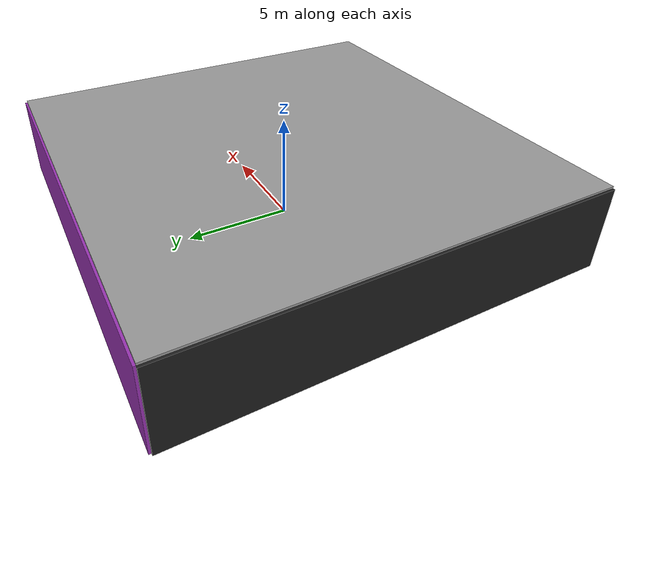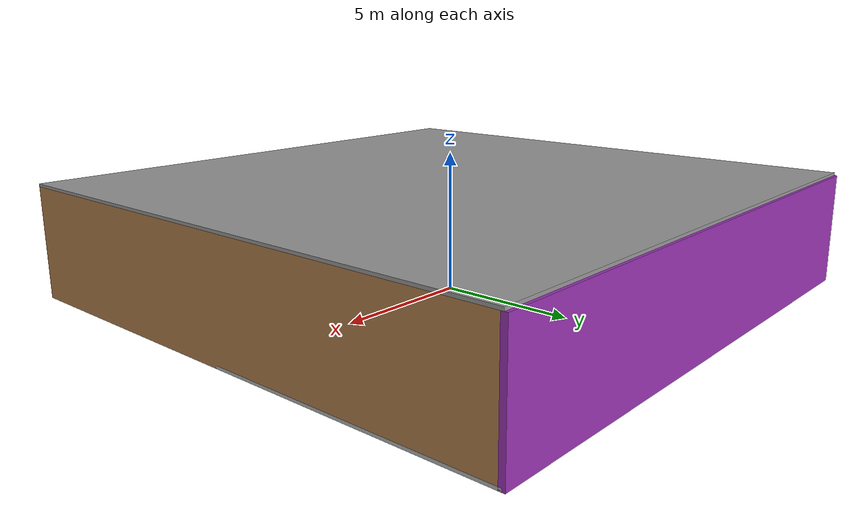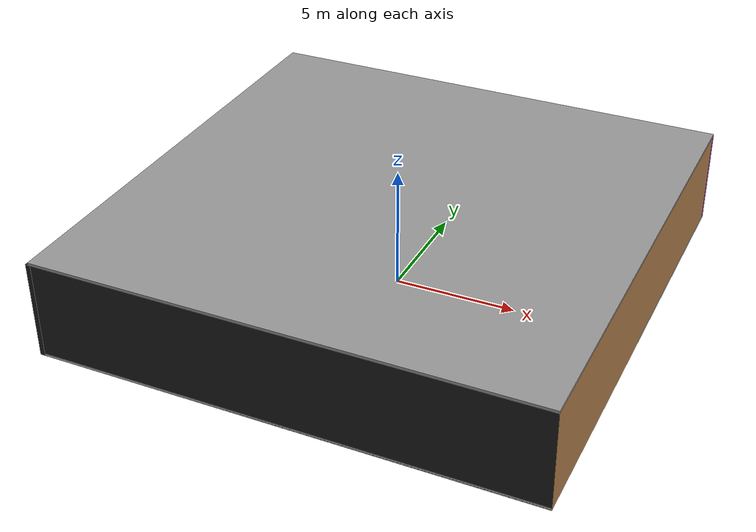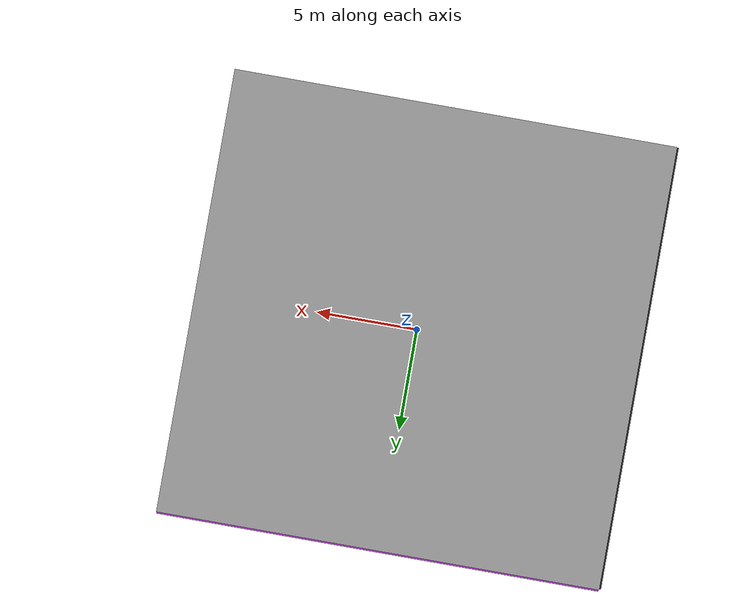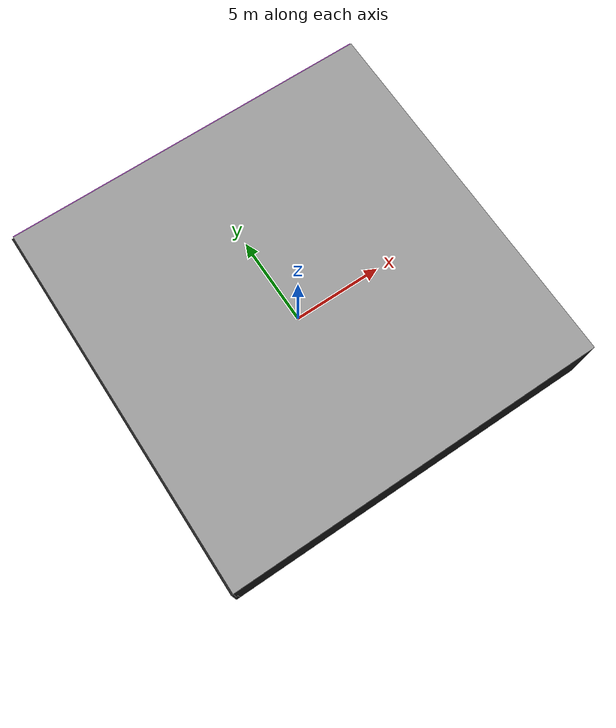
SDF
<sdf version="1.4">
 <world name="default">
  <physics type="ode">
   <max_step_size>0.001</max_step_size>
   <real_time_factor>1</real_time_factor>
   <real_time_update_rate>1000</real_time_update_rate>
   <gravity>0 0 -9.8</gravity>
  </physics>
  <scene><ambient>0.4 0.4 0.4 1</ambient><background>0.7 0.7 0.7 1</background><shadows>1</shadows></scene>
  <model name="Surrounding">
   <static>1</static>
   <link name="Ceiling">
    <collision name="Ceiling_Collision"><geometry><box><size>20 20 0.1</size></box></geometry></collision>
    <visual name="Ceiling_Visual">
     <geometry><box><size>20 20 0.1</size></box></geometry>
     <material>
      <script><uri>file://media/materials/scripts/gazebo.material</uri><name>Gazebo/Grey</name></script>
     </material>
    </visual>
    <pose>0 0 4.05 0 0 0</pose>
   </link>
   <link name="Wall_South">
    <collision name="Wall_South_Collision">
     <geometry><box><size>20 0 4</size></box></geometry>
     <pose>0 0 2 0 -0 0</pose>
    </collision>
    <visual name="Wall_South_Visual">
     <pose>0 0 2 0 -0 0</pose>
     <geometry><box><size>20 0 4</size></box></geometry>
     <material>
      <script><uri>file://media/materials/scripts/gazebo.material</uri><name>Gazebo/Black</name></script>
     </material>
    </visual>
    <velocity_decay><linear>0</linear><angular>0</angular></velocity_decay>
    <pose>0 -10 0 0 -0 0</pose>
   </link>
   <link name="Wall_East">
    <collision name="Wall_21_Collision">
     <geometry><box><size>20 0 4</size></box></geometry>
     <pose>0 0 2 0 -0 0</pose>
    </collision>
    <visual name="Wall_21_Visual">
     <pose>0 0 2 0 -0 0</pose>
     <geometry><box><size>20 0 4</size></box></geometry>
     <material>
      <script><uri>file://media/materials/scripts/gazebo.material</uri><name>Gazebo/WoodPallet</name></script>
     </material>
    </visual>
    <velocity_decay><linear>0</linear><angular>0</angular></velocity_decay>
    <pose>10 0 0 0 -0 1.5708</pose>
   </link>
   <link name="Wall_North">
    <collision name="Wall_22_Collision">
     <geometry><box><size>20 0.2 4</size></box></geometry>
     <pose>0 0 2 0 -0 0</pose>
    </collision>
    <visual name="Wall_22_Visual">
     <pose>0 0 2 0 -0 0</pose>
     <geometry><box><size>20 0.2 4</size></box></geometry>
     <material>
      <script><uri>file://media/materials/scripts/gazebo.material</uri><name>Gazebo/Purple</name></script>
     </material>
    </visual>
    <velocity_decay><linear>0</linear><angular>0</angular></velocity_decay>
    <pose>0 10 0 0 -0 0</pose>
   </link>
   <link name="Wall_West">
    <collision name="Wall_23_Collision">
     <geometry><box><size>20 0.2 4</size></box></geometry>
     <pose>0 0 2 0 -0 0</pose>
    </collision>
    <visual name="Wall_23_Visual">
     <pose>0 0 2 0 -0 0</pose>
     <geometry><box><size>20 0.2 4</size></box></geometry>
     <material>
      <script><uri>file://media/materials/scripts/gazebo.material</uri><name>Gazebo/Black</name></script>
     </material>
    </visual>
    <velocity_decay><linear>0</linear><angular>0</angular></velocity_decay>
    <pose>-10 0 0 0 0 -1.5708</pose>
   </link>
   <link name="Ground_link">
    <collision name="collision">
     <pose>0 0 .05 0 -0 0</pose>
     <geometry><box><size>20 20 0.1</size></box></geometry>
    </collision>
    <visual name="visual">
     <pose>0 0 .05 0 -0 0</pose>
     <geometry><box><size>20 20 0.1</size></box></geometry>
     <material>
      <script><uri>file://media/materials/scripts/gazebo.material</uri><name>Gazebo/PioneerBody</name></script>
     </material>
    </visual>
   </link>
   <static>1</static>
  </model>
  <spherical_coordinates>
   <surface_model>EARTH_WGS84</surface_model>
   <latitude_deg>0</latitude_deg>
   <longitude_deg>0</longitude_deg>
   <elevation>0</elevation>
   <heading_deg>0</heading_deg>
  </spherical_coordinates>
  <light name="lightball_0" type="diffuse">
   <diffuse>0.8 0.8 0.8 1</diffuse>
   <specular>0.2 0.2 0.2 1</specular>
   <attenuation>
    <range>100</range>
    <constant>0.7</constant>
    <linear>0.01</linear>
    <quadratic>0.001</quadratic>
   </attenuation>
   <direction>-0.5 0.1 -0.9</direction>
   <pose>-3.48026093215 -2.02964985593 1.31506642319 0 0 0</pose>
  </light>
  <light name="lightball_1" type="diffuse">
   <diffuse>0.8 0.8 0.8 1</diffuse>
   <specular>0.2 0.2 0.2 1</specular>
   <attenuation>
    <range>100</range>
    <constant>0.7</constant>
    <linear>0.01</linear>
    <quadratic>0.001</quadratic>
   </attenuation>
   <direction>-0.5 0.1 -0.9</direction>
   <pose>9.16258832278 -9.72816789125 3.01095868783 0 0 0</pose>
  </light>
  <light name="lightball_2" type="diffuse">
   <diffuse>0.8 0.8 0.8 1</diffuse>
   <specular>0.2 0.2 0.2 1</specular>
   <attenuation>
    <range>100</range>
    <constant>0.7</constant>
    <linear>0.01</linear>
    <quadratic>0.001</quadratic>
   </attenuation>
   <direction>-0.5 0.1 -0.9</direction>
   <pose>-0.365033008306 3.42573514844 1.25696340637 0 0 0</pose>
  </light>
  <light name="lightball_3" type="diffuse">
   <diffuse>0.8 0.8 0.8 1</diffuse>
   <specular>0.2 0.2 0.2 1</specular>
   <attenuation>
    <range>100</range>
    <constant>0.7</constant>
    <linear>0.01</linear>
    <quadratic>0.001</quadratic>
   </attenuation>
   <direction>-0.5 0.1 -0.9</direction>
   <pose>5.29917478931 -6.31287211167 1.21888133115 0 0 0</pose>
  </light>
  <light name="lightball_4" type="diffuse">
   <diffuse>0.8 0.8 0.8 1</diffuse>
   <specular>0.2 0.2 0.2 1</specular>
   <attenuation>
    <range>100</range>
    <constant>0.7</constant>
    <linear>0.01</linear>
    <quadratic>0.001</quadratic>
   </attenuation>
   <direction>-0.5 0.1 -0.9</direction>
   <pose>-7.54161377127 1.98013595666 2.78515127414 0 0 0</pose>
  </light>
  <light name="lightball_5" type="diffuse">
   <diffuse>0.8 0.8 0.8 1</diffuse>
   <specular>0.2 0.2 0.2 1</specular>
   <attenuation>
    <range>100</range>
    <constant>0.7</constant>
    <linear>0.01</linear>
    <quadratic>0.001</quadratic>
   </attenuation>
   <direction>-0.5 0.1 -0.9</direction>
   <pose>8.49755258866 4.75965762673 1.59224349579 0 0 0</pose>
  </light>
  <light name="lightball_6" type="diffuse">
   <diffuse>0.8 0.8 0.8 1</diffuse>
   <specular>0.2 0.2 0.2 1</specular>
   <attenuation>
    <range>100</range>
    <constant>0.7</constant>
    <linear>0.01</linear>
    <quadratic>0.001</quadratic>
   </attenuation>
   <direction>-0.5 0.1 -0.9</direction>
   <pose>4.49387482731 0.440866214175 0.936320873511 0 0 0</pose>
  </light>
  <light name="lightball_7" type="diffuse">
   <diffuse>0.8 0.8 0.8 1</diffuse>
   <specular>0.2 0.2 0.2 1</specular>
   <attenuation>
    <range>100</range>
    <constant>0.7</constant>
    <linear>0.01</linear>
    <quadratic>0.001</quadratic>
   </attenuation>
   <direction>-0.5 0.1 -0.9</direction>
   <pose>-7.86693672098 -7.46794421337 3.77140347591 0 0 0</pose>
  </light>
  <light name="lightball_8" type="diffuse">
   <diffuse>0.8 0.8 0.8 1</diffuse>
   <specular>0.2 0.2 0.2 1</specular>
   <attenuation>
    <range>100</range>
    <constant>0.7</constant>
    <linear>0.01</linear>
    <quadratic>0.001</quadratic>
   </attenuation>
   <direction>-0.5 0.1 -0.9</direction>
   <pose>7.66156076939 2.59101606236 3.56227593749 0 0 0</pose>
  </light>
  <light name="lightball_9" type="diffuse">
   <diffuse>0.8 0.8 0.8 1</diffuse>
   <specular>0.2 0.2 0.2 1</specular>
   <attenuation>
    <range>100</range>
    <constant>0.7</constant>
    <linear>0.01</linear>
    <quadratic>0.001</quadratic>
   </attenuation>
   <direction>-0.5 0.1 -0.9</direction>
   <pose>-1.0814275441 6.40268671997 3.53336612053 0 0 0</pose>
  </light>
  <light name="lightball_10" type="diffuse">
   <diffuse>0.8 0.8 0.8 1</diffuse>
   <specular>0.2 0.2 0.2 1</specular>
   <attenuation>
    <range>100</range>
    <constant>0.7</constant>
    <linear>0.01</linear>
    <quadratic>0.001</quadratic>
   </attenuation>
   <direction>-0.5 0.1 -0.9</direction>
   <pose>6.79693941619 3.96171431134 3.74986379623 0 0 0</pose>
  </light>
  <include>
   <uri>model://robocup_3Dsim_goal</uri>
   <pose>-4.61255014866 -6.77826927485 0 0 0 3.11648421496</pose>
  </include>
  <include><uri>model://table</uri><pose>-1.42908399488 -4.64636843659 0 0 0 1.84176419725</pose></include>
  <include>
   <uri>model://construction_cone</uri>
   <pose>1.09012048466 -1.65793554891 0 0 0 2.35565651205</pose>
  </include>
  <include><uri>model://table</uri><pose>0.982942362545 7.95579663878 0 0 0 2.67674905183</pose></include>
  <include>
   <uri>model://construction_cone</uri>
   <pose>7.73469259552 2.03405520425 0 0 0 2.54508809739</pose>
  </include>
 </world>
</sdf>

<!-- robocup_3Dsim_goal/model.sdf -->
<sdf version="1.5">
  <model name="robocup_3d_goal">
    <static>true</static>
    <link name="left_post">
      <pose>0 1.05 0.45 0 0 0</pose>
      <collision name="collision">
        <geometry>
          <cylinder>
            <radius>0.05</radius>
            <length>0.9</length>
          </cylinder>
        </geometry>
      </collision>
      <visual name="visual">
        <geometry>
          <cylinder>
            <radius>0.05</radius>
            <length>0.9</length>
          </cylinder>
        </geometry>
        <material>
          <script>
            <uri>file://media/materials/scripts/gazebo.material</uri>
            <name>Gazebo/ZincYellow</name>
          </script>
        </material>
      </visual>
    </link>
    <link name="left_support_horiz_lower">
      <pose>0.30 1.05 0.01 0 0 0</pose>
      <collision name="collision">
        <geometry>
          <box>
            <size>0.50 0.02 0.02</size>
          </box>
        </geometry>
      </collision>
      <visual name="visual">
        <geometry>
          <box>
            <size>0.50 0.02 0.02</size>
          </box>
        </geometry>
        <material>
          <script>
            <uri>file://media/materials/scripts/gazebo.material</uri>
            <name>Gazebo/White</name>
          </script>
        </material>
      </visual>
    </link>
    <link name="left_support_horiz_upper">
      <pose>0.30 1.05 0.79 0 0 0</pose>
      <collision name="collision">
        <geometry>
          <box>
            <size>0.50 0.02 0.02</size>
          </box>
        </geometry>
      </collision>
      <visual name="visual">
        <geometry>
          <box>
            <size>0.50 0.02 0.02</size>
          </box>
        </geometry>
        <material>
          <script>
            <uri>file://media/materials/scripts/gazebo.material</uri>
            <name>Gazebo/White</name>
          </script>
        </material>
      </visual>
    </link>
    <link name="left_support_vertical">
      <pose>0.56 1.05 0.4 0 1.5708 0</pose>
      <collision name="collision">
        <geometry>
          <box>
            <size>0.80 0.02 0.02</size>
          </box>
        </geometry>
      </collision>
      <visual name="visual">
        <geometry>
          <box>
            <size>0.80 0.02 0.02</size>
          </box>
        </geometry>
        <material>
          <script>
            <uri>file://media/materials/scripts/gazebo.material</uri>
            <name>Gazebo/White</name>
          </script>
        </material>
      </visual>
    </link>
    <link name="right_support_horiz_lower">
      <pose>0.30 -1.05 0.01 0 0 0</pose>
      <collision name="collision">
        <geometry>
          <box>
            <size>0.50 0.02 0.02</size>
          </box>
        </geometry>
      </collision>
      <visual name="visual">
        <geometry>
          <box>
            <size>0.50 0.02 0.02</size>
          </box>
        </geometry>
        <material>
          <script>
            <uri>file://media/materials/scripts/gazebo.material</uri>
            <name>Gazebo/White</name>
          </script>
        </material>
      </visual>
    </link>
    <link name="right_support_horiz_upper">
      <pose>0.30 -1.05 0.79 0 0 0</pose>
      <collision name="collision">
        <geometry>
          <box>
            <size>0.50 0.02 0.02</size>
          </box>
        </geometry>
      </collision>
      <visual name="visual">
        <geometry>
          <box>
            <size>0.50 0.02 0.02</size>
          </box>
        </geometry>
        <material>
          <script>
            <uri>file://media/materials/scripts/gazebo.material</uri>
            <name>Gazebo/White</name>
          </script>
        </material>
      </visual>
    </link>
    <link name="right_support_vertical">
      <pose>0.56 -1.05 0.4 0 1.5708 0</pose>
      <collision name="collision">
        <geometry>
          <box>
            <size>0.80 0.02 0.02</size>
          </box>
        </geometry>
      </collision>
      <visual name="visual">
        <geometry>
          <box>
            <size>0.80 0.02 0.02</size>
          </box>
        </geometry>
        <material>
          <script>
            <uri>file://media/materials/scripts/gazebo.material</uri>
            <name>Gazebo/White</name>
          </script>
        </material>
      </visual>
    </link>
    <link name="center_support_horiz_lower">
      <pose>0.56 0 0.01 0 1.5708 0</pose>
      <collision name="collision">
        <geometry>
          <box>
            <size>0.02 2.08 0.02</size>
          </box>
        </geometry>
      </collision>
      <visual name="visual">
        <geometry>
          <box>
            <size>0.02 2.08 0.02</size>
          </box>
        </geometry>
        <material>
          <script>
            <uri>file://media/materials/scripts/gazebo.material</uri>
            <name>Gazebo/White</name>
          </script>
        </material>
      </visual>
    </link>
    <link name="center_support_horiz_upper">
      <pose>0.56 0 0.79 0 1.5708 0</pose>
      <collision name="collision">
        <geometry>
          <box>
            <size>0.02 2.08 0.02</size>
          </box>
        </geometry>
      </collision>
      <visual name="visual">
        <geometry>
          <box>
            <size>0.02 2.08 0.02</size>
          </box>
        </geometry>
        <material>
          <script>
            <uri>file://media/materials/scripts/gazebo.material</uri>
            <name>Gazebo/White</name>
          </script>
        </material>
      </visual>
    </link>
    <link name="right_post">
      <pose>0 -1.05 0.45 0 0 0</pose>
      <collision name="collision">
        <geometry>
          <cylinder>
            <radius>0.05</radius>
            <length>0.9</length>
          </cylinder>
        </geometry>
      </collision>
      <visual name="visual">
        <geometry>
          <cylinder>
            <radius>0.05</radius>
            <length>0.9</length>
          </cylinder>
        </geometry>
        <material>
          <script>
            <uri>file://media/materials/scripts/gazebo.material</uri>
            <name>Gazebo/ZincYellow</name>
          </script>
        </material>
      </visual>
    </link>
    <link name="crossbar">
      <pose>0 0 0.85 1.57 1.57 0</pose>
      <collision name="collision">
        <geometry>
          <cylinder>
            <radius>0.05</radius>
            <length>2.0</length>
          </cylinder>
        </geometry>
      </collision>
      <visual name="visual">
        <geometry>
          <cylinder>
            <radius>0.05</radius>
            <length>2.0</length>
          </cylinder>
        </geometry>
        <material>
          <script>
            <uri>file://media/materials/scripts/gazebo.material</uri>
            <name>Gazebo/ZincYellow</name>
          </script>
        </material>
      </visual>
    </link>
    <link name="center_net">
      <pose>0.56 0 0.40 0 0 0</pose>
      <collision name="collision">
        <geometry>
          <box>
            <size>0.01 2.1 0.80</size>
          </box>
        </geometry>
      </collision>
      <visual name="visual">
        <geometry>
          <box>
            <size>0.01 2.1 0.80</size>
          </box>
        </geometry>
        <material>
          <script>
            <uri>model://../model_source/models/robocup09_spl_field/materials/scripts/</uri>
            <uri>model://../model_source/models/robocup09_spl_field/materials/textures/</uri>
            <name>RoboCup/Net</name>
          </script>
        </material>
      </visual>
    </link>
    <link name="left_net">
      <pose>0.30 1.05 0.40 0 0 0</pose>
      <collision name="collision">
        <geometry>
          <box>
            <size>0.50 0.01 0.76</size>
          </box>
        </geometry>
      </collision>
      <visual name="visual">
        <geometry>
          <box>
            <size>0.50 0.01 0.76</size>
          </box>
        </geometry>
        <material>
          <script>
            <uri>model://../model_source/models/robocup09_spl_field/materials/scripts/</uri>
            <uri>model://../model_source/models/robocup09_spl_field/materials/textures/</uri>
            <name>RoboCup/Net</name>
          </script>
        </material>
      </visual>
    </link>
    <link name="right_net">
      <pose>0.30 -1.05 0.40 0 0 0</pose>
      <collision name="collision">
        <geometry>
          <box>
            <size>0.50 0.01 0.76</size>
          </box>
        </geometry>
      </collision>
      <visual name="visual">
        <geometry>
          <box>
            <size>0.50 0.01 0.76</size>
          </box>
        </geometry>
        <material>
          <script>
            <uri>model://../model_source/models/robocup09_spl_field/materials/scripts/</uri>
            <uri>model://../model_source/models/robocup09_spl_field/materials/textures/</uri>
            <name>RoboCup/Net</name>
          </script>
        </material>
      </visual>
    </link>
  </model>
</sdf>

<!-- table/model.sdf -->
<sdf version="1.5">
  <model name="table">
    <static>true</static>
    <link name="link">
      <collision name="surface">
        <pose>0 0 1.0 0 0 0</pose>
        <geometry>
          <box>
            <size>1.5 0.8 0.03</size>
          </box>
        </geometry>
        <surface>
          <friction>
            <ode>
              <mu>0.6</mu>
              <mu2>0.6</mu2>
            </ode>
          </friction>
        </surface>
      </collision>
      <visual name="visual1">
        <pose>0 0 1.0 0 0 0</pose>
        <geometry>
          <box>
            <size>1.5 0.8 0.03</size>
          </box>
        </geometry>
        <material>
          <script>
            <uri>model://media/materials/scripts/gazebo.material</uri>
            <name>Gazebo/Wood</name>
          </script>
        </material>
      </visual>
      <collision name="front_left_leg">
        <pose>0.68 0.38 0.5 0 0 0</pose>
        <geometry>
          <cylinder>
            <radius>0.02</radius>
            <length>1.0</length>
          </cylinder>
        </geometry>
      </collision>
      <visual name="front_left_leg">
        <pose>0.68 0.38 0.5 0 0 0</pose>
        <geometry>
          <cylinder>
            <radius>0.02</radius>
            <length>1.0</length>
          </cylinder>
        </geometry>
        <material>
          <script>
            <uri>model://media/materials/scripts/gazebo.material</uri>
            <name>Gazebo/Grey</name>
          </script>
        </material>
      </visual>
      <collision name="front_right_leg">
        <pose>0.68 -0.38 0.5 0 0 0</pose>
        <geometry>
          <cylinder>
            <radius>0.02</radius>
            <length>1.0</length>
          </cylinder>
        </geometry>
      </collision>
      <visual name="front_right_leg">
        <pose>0.68 -0.38 0.5 0 0 0</pose>
        <geometry>
          <cylinder>
            <radius>0.02</radius>
            <length>1.0</length>
          </cylinder>
        </geometry>
        <material>
          <script>
            <uri>model://media/materials/scripts/gazebo.material</uri>
            <name>Gazebo/Grey</name>
          </script>
        </material>
      </visual>
      <collision name="back_right_leg">
        <pose>-0.68 -0.38 0.5 0 0 0</pose>
        <geometry>
          <cylinder>
            <radius>0.02</radius>
            <length>1.0</length>
          </cylinder>
        </geometry>
      </collision>
      <visual name="back_right_leg">
        <pose>-0.68 -0.38 0.5 0 0 0</pose>
        <geometry>
          <cylinder>
            <radius>0.02</radius>
            <length>1.0</length>
          </cylinder>
        </geometry>
        <material>
          <script>
            <uri>model://media/materials/scripts/gazebo.material</uri>
            <name>Gazebo/Grey</name>
          </script>
        </material>
      </visual>
      <collision name="back_left_leg">
        <pose>-0.68 0.38 0.5 0 0 0</pose>
        <geometry>
          <cylinder>
            <radius>0.02</radius>
            <length>1.0</length>
          </cylinder>
        </geometry>
      </collision>
      <visual name="back_left_leg">
        <pose>-0.68 0.38 0.5 0 0 0</pose>
        <geometry>
          <cylinder>
            <radius>0.02</radius>
            <length>1.0</length>
          </cylinder>
        </geometry>
        <material>
          <script>
            <uri>model://media/materials/scripts/gazebo.material</uri>
            <name>Gazebo/Grey</name>
          </script>
        </material>
      </visual>
    </link>
  </model>
</sdf>

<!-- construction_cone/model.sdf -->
<sdf version="1.5">
  <model name="Construction Cone">
    <link name="link">
      <collision name="collision">
        <geometry>
          <mesh>
            <scale>10 10 10</scale>
            <uri>file://isr-testbed/construction_cone/meshes/construction_cone.dae</uri>
          </mesh>
        </geometry>
      </collision>
      <visual name="visual">
        <geometry>
          <mesh>
            <scale>10 10 10</scale>
            <uri>file://isr-testbed/construction_cone/meshes/construction_cone.dae</uri>
          </mesh>
        </geometry>
      </visual>
    </link>
  </model>
</sdf>
